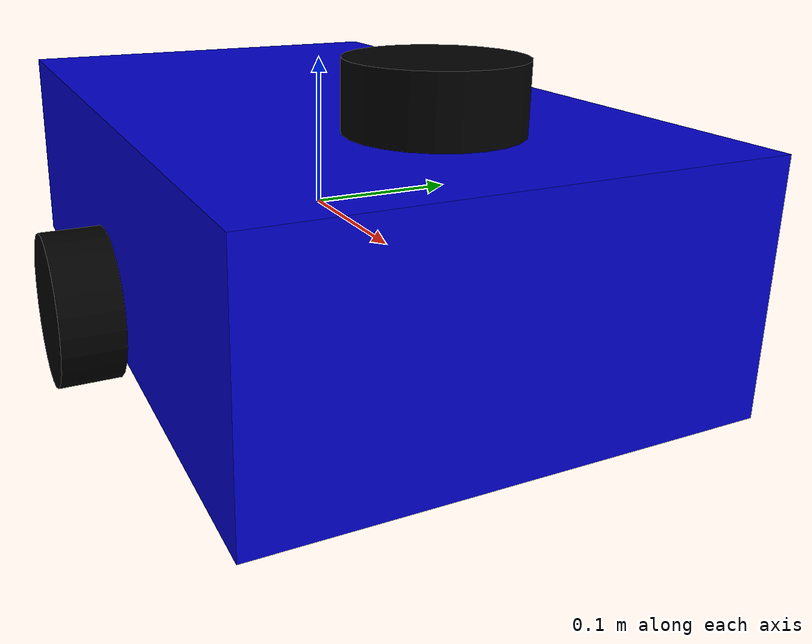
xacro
<?xml version="1.0"?>
<robot xmlns:xacro="http://www.ros.org/wiki/xacro" name="box_bot">

    <material name="blue"><color rgba="0 0 0.8 1"/></material>
    <material name="black"><color rgba="0 0 0 1"/></material>
    <material name="white"><color rgba="1 1 1 1"/></material>

    <xacro:macro name="box_inertia" params="m x y z">
        <inertial>
            <mass value="${m}"/>
            <inertia ixx="${(m/12) * (y*y + z*z)}" ixy="0.0" ixz="0.0"
                     iyy="${(m/12) * (x*x + z*z)}" iyz="0.0"
                     izz="${(m/12) * (x*x + y*y)}"/>
        </inertial>
    </xacro:macro>

    <xacro:macro name="cylinder_inertia" params="m r h">
        <inertial>
            <mass value="${m}"/>
            <inertia ixx="${(m/12) * (3*r*r + h*h)}" ixy="0.0" ixz="0.0"
                     iyy="${(m/12) * (3*r*r + h*h)}" iyz="0.0"
                     izz="${(m/2) * (r*r)}"/>
        </inertial>
    </xacro:macro>

    <link name="base_link">
        <visual>
            <geometry><box size="0.5 0.3 0.15"/></geometry>
            <material name="blue"/>
        </visual>
        <collision>
            <geometry><box size="0.5 0.3 0.15"/></geometry>
        </collision>
        <xacro:box_inertia m="5.0" x="0.5" y="0.3" z="0.15"/>
    </link>

    <link name="base_footprint"/>
    <joint name="base_joint" type="fixed">
        <parent link="base_link"/>
        <child link="base_footprint"/>
        <origin xyz="0 0 -0.075"/> </joint>

    <xacro:macro name="wheel" params="prefix y_reflect">
        <link name="${prefix}_wheel">
            <visual>
                <geometry><cylinder radius="0.05" length="0.04"/></geometry>
                <material name="black"/>
                <origin rpy="1.57 0 0"/> </visual>
            <collision>
                <geometry><cylinder radius="0.05" length="0.04"/></geometry>
                <origin rpy="1.57 0 0"/>
            </collision>
            <xacro:cylinder_inertia m="1.0" r="0.05" h="0.04"/>
        </link>

        <joint name="${prefix}_joint" type="continuous">
            <parent link="base_link"/>
            <child link="${prefix}_wheel"/>
            <origin xyz="0 ${y_reflect*0.17} -0.05" rpy="0 0 0"/>
            <axis xyz="0 1 0"/>
        </joint>
    </xacro:macro>

    <xacro:wheel prefix="left" y_reflect="1"/>
    <xacro:wheel prefix="right" y_reflect="-1"/>

    <link name="caster_wheel">
        <visual>
            <geometry><sphere radius="0.03"/></geometry>
            <material name="white"/>
        </visual>
        <collision>
            <geometry><sphere radius="0.03"/></geometry>
        </collision>
        <inertial>
            <mass value="0.5"/>
            <inertia ixx="0.001" ixy="0" ixz="0" iyy="0.001" iyz="0" izz="0.001"/>
        </inertial>
    </link>

    <joint name="caster_joint" type="fixed">
        <parent link="base_link"/>
        <child link="caster_wheel"/>
        <origin xyz="0.2 0 -0.075"/> </joint>

    <gazebo>
        <!-- Actuation only: its odometry/tf go to unbridged topics -->
        <plugin filename="gz-sim-diff-drive-system" name="gz::sim::systems::DiffDrive">
            <left_joint>left_joint</left_joint>
            <right_joint>right_joint</right_joint>
            <wheel_separation>0.34</wheel_separation>
            <wheel_radius>0.05</wheel_radius>

            <max_linear_acceleration>1.0</max_linear_acceleration>

            <topic>/cmd_vel</topic>
            <odom_topic>/diff_drive/odom</odom_topic>
            <tf_topic>/diff_drive/tf</tf_topic>
            <frame_id>odom</frame_id>
            <child_frame_id>base_link</child_frame_id>
        </plugin>

        <!-- Ground-truth odometry (like gazebo_ros_p3d), stays correct after teleport resets -->
        <plugin filename="gz-sim-odometry-publisher-system" name="gz::sim::systems::OdometryPublisher">
            <odom_frame>odom</odom_frame>
            <robot_base_frame>base_link</robot_base_frame>
            <odom_topic>/odom</odom_topic>
            <tf_topic>/tf</tf_topic>
            <odom_publish_frequency>50</odom_publish_frequency>
            <dimensions>2</dimensions>
        </plugin>

        <plugin filename="gz-sim-joint-state-publisher-system" name="gz::sim::systems::JointStatePublisher">
            <topic>/joint_states</topic>
        </plugin>
    </gazebo>

    <gazebo reference="caster_wheel">
        <mu1>0.01</mu1>
        <mu2>0.01</mu2>
    </gazebo>

    <link name="lidar_link">
        <visual>
            <geometry><cylinder radius="0.05" length="0.04"/></geometry>
            <material name="black"/>
        </visual>
        <collision>
            <geometry><cylinder radius="0.05" length="0.04"/></geometry>
        </collision>
        <inertial>
            <mass value="0.1"/>
            <inertia ixx="0.001" ixy="0" ixz="0" iyy="0.001" iyz="0" izz="0.001"/>
        </inertial>
    </link>

    <joint name="lidar_joint" type="fixed">
        <parent link="base_link"/>
        <child link="lidar_link"/>
        <origin xyz="0.15 0 0.1" rpy="0 0 0"/>
    </joint>

    <gazebo reference="lidar_link">
        <sensor name="lidar" type="gpu_lidar">
            <always_on>true</always_on>
            <visualize>true</visualize>
            <update_rate>10</update_rate>
            <topic>/scan</topic>
            <gz_frame_id>lidar_link</gz_frame_id>
            <lidar>
                <scan>
                    <horizontal>
                        <samples>360</samples>
                        <resolution>1.000000</resolution>
                        <min_angle>0.000000</min_angle>
                        <max_angle>6.280000</max_angle>
                    </horizontal>
                    <vertical>
                        <samples>1</samples>
                        <resolution>1</resolution>
                        <min_angle>0</min_angle>
                        <max_angle>0</max_angle>
                    </vertical>
                </scan>
                <range>
                    <min>0.120000</min>
                    <max>3.5</max>
                    <resolution>0.015000</resolution>
                </range>
            </lidar>
        </sensor>
    </gazebo>

</robot>
